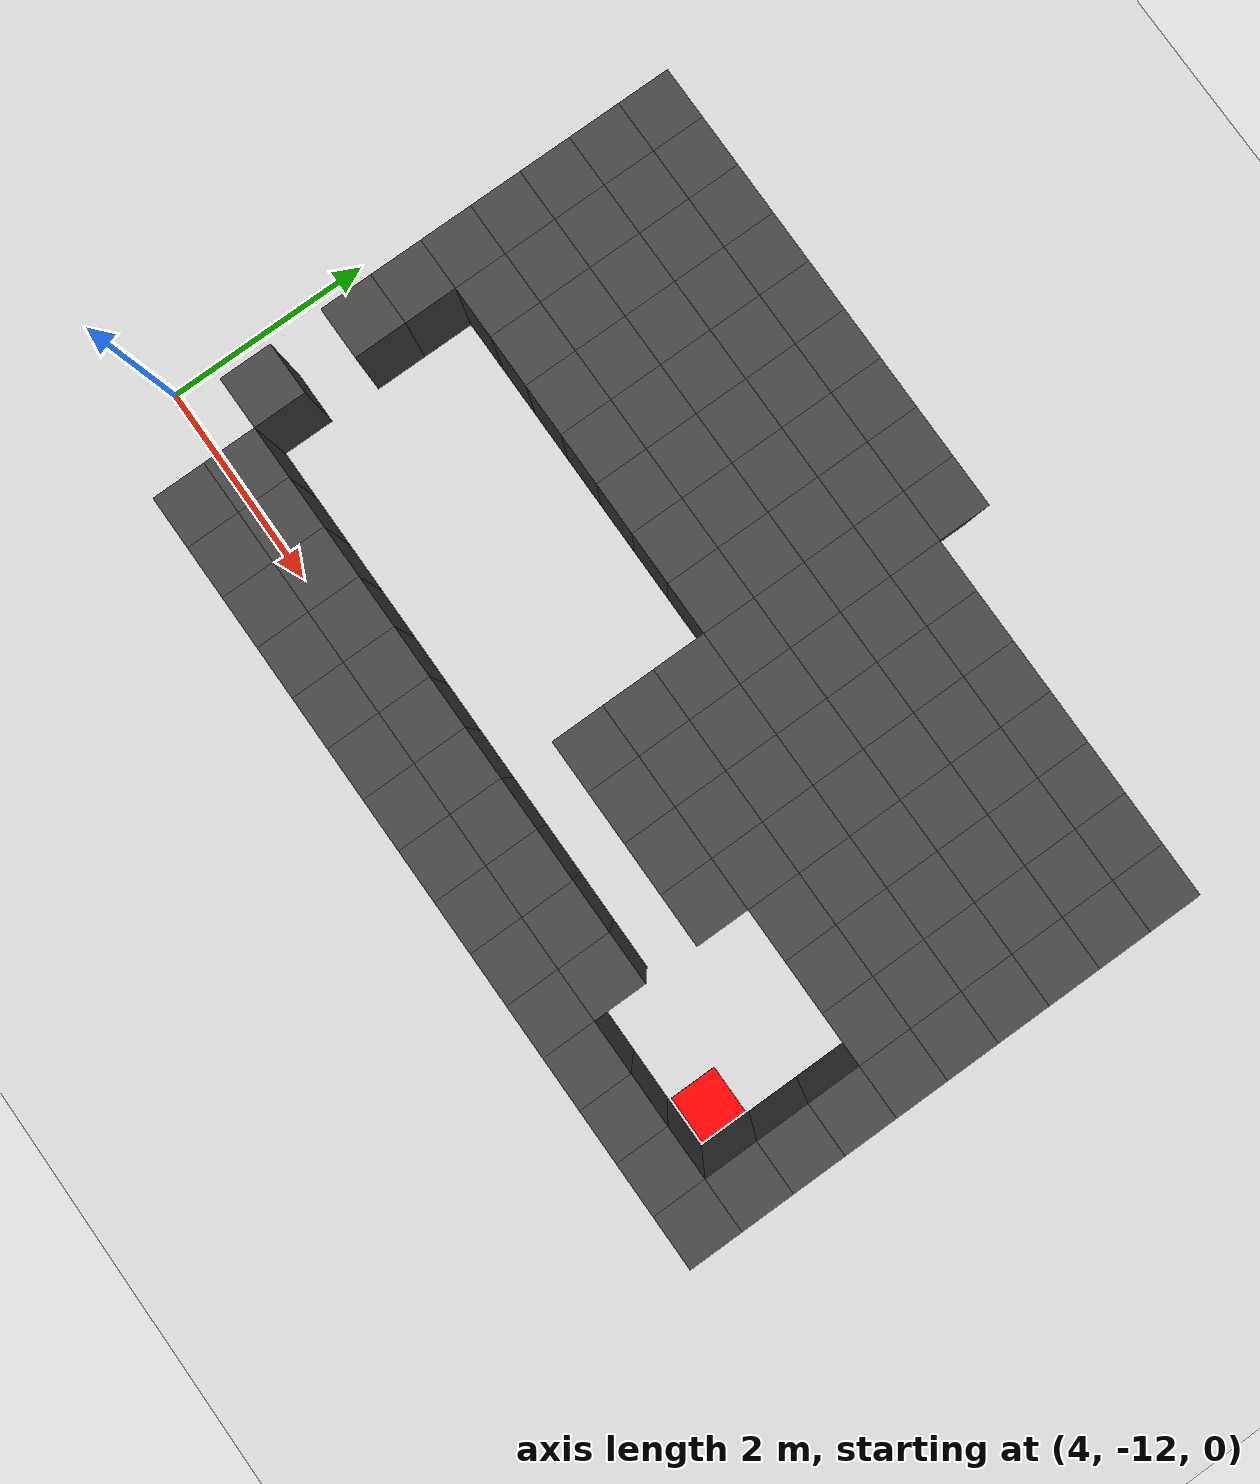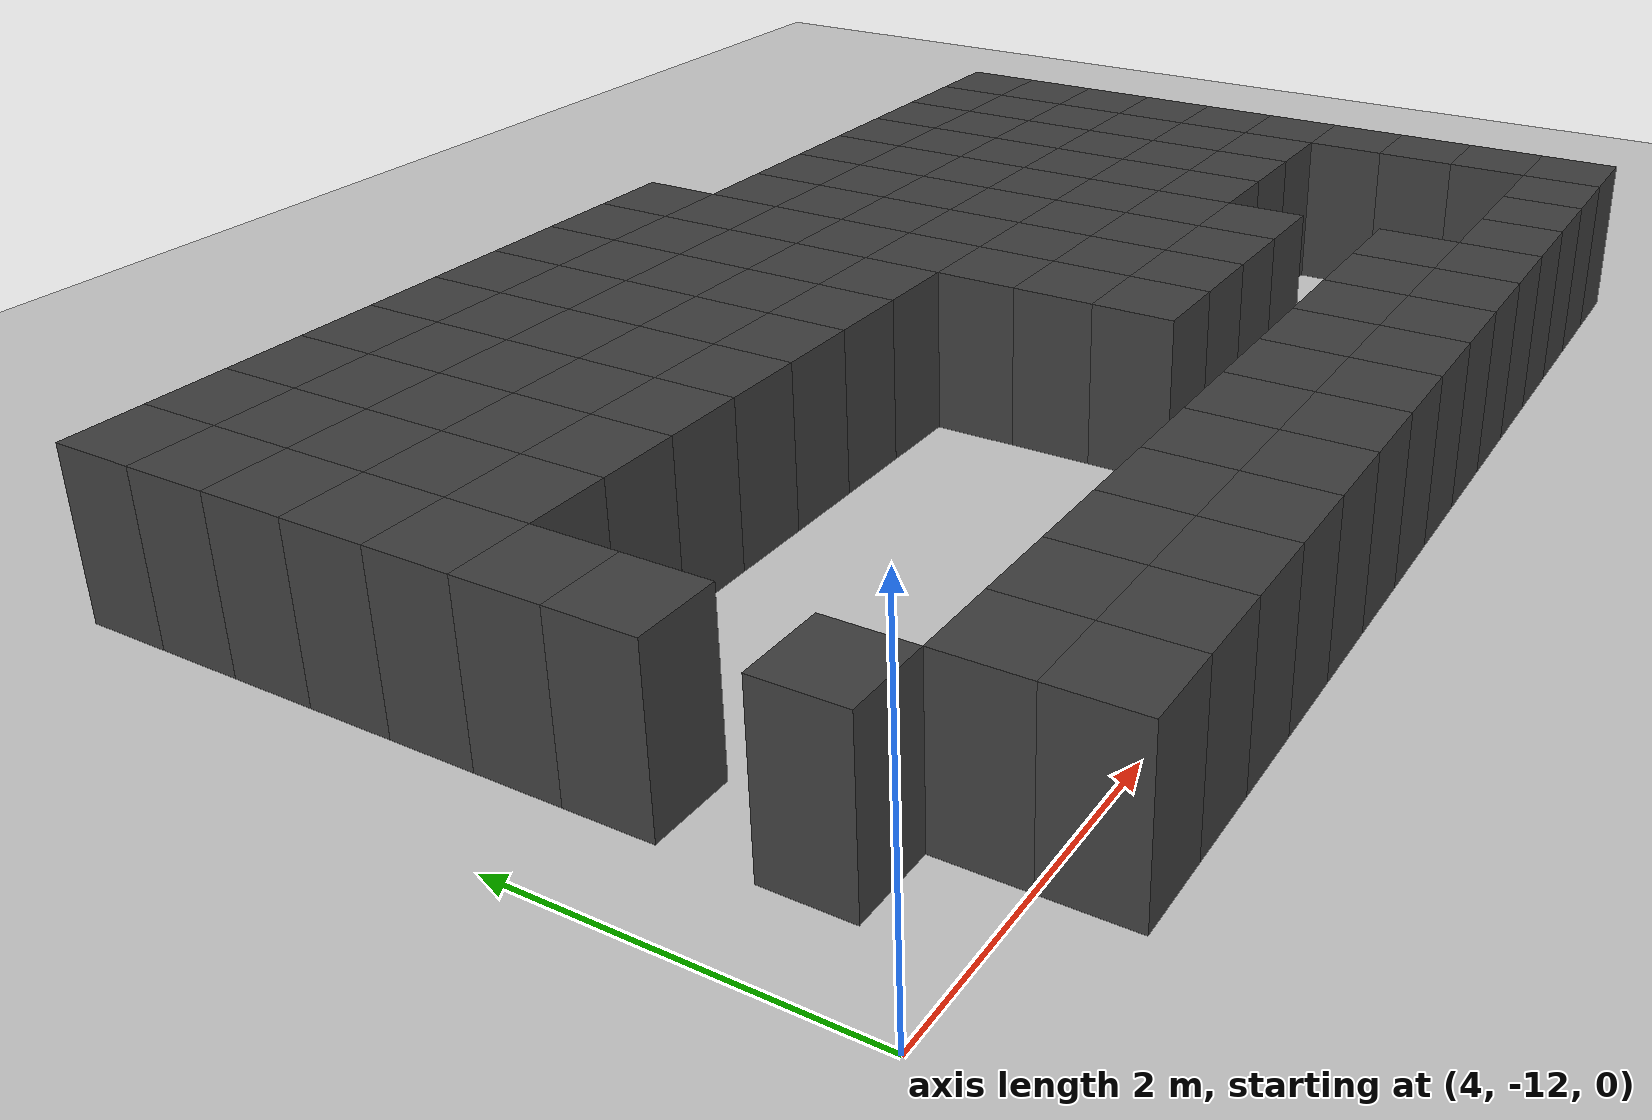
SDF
<sdf version="1.7">
 <world name="map_14056">
  <model name="ground_plane">
   <static>true</static>
   <link name="link">
    <collision name="collision">
     <geometry><plane><normal>0 0 1</normal><size>200 200</size></plane></geometry>
    </collision>
    <visual name="visual">
     <geometry><plane><normal>0 0 1</normal><size>200 200</size></plane></geometry>
     <material><ambient>0.8 0.8 0.8 1</ambient><diffuse>0.8 0.8 0.8 1</diffuse></material>
    </visual>
   </link>
  </model>
  <model name="maze_environment">
   <static>true</static>
   <link name="wall_1396">
    <pose>4.750 -7.250 0.500 0 0 0</pose>
    <collision name="col"><geometry><box><size>0.5 0.5 1.0</size></box></geometry></collision>
    <visual name="vis">
     <geometry><box><size>0.5 0.5 1.0</size></box></geometry>
     <material><ambient>0.15 0.15 0.15 1</ambient><diffuse>0.25 0.25 0.25 1</diffuse></material>
    </visual>
   </link>
   <link name="wall_1397">
    <pose>5.250 -7.250 0.500 0 0 0</pose>
    <collision name="col"><geometry><box><size>0.5 0.5 1.0</size></box></geometry></collision>
    <visual name="vis">
     <geometry><box><size>0.5 0.5 1.0</size></box></geometry>
     <material><ambient>0.15 0.15 0.15 1</ambient><diffuse>0.25 0.25 0.25 1</diffuse></material>
    </visual>
   </link>
   <link name="wall_1398">
    <pose>5.750 -7.250 0.500 0 0 0</pose>
    <collision name="col"><geometry><box><size>0.5 0.5 1.0</size></box></geometry></collision>
    <visual name="vis">
     <geometry><box><size>0.5 0.5 1.0</size></box></geometry>
     <material><ambient>0.15 0.15 0.15 1</ambient><diffuse>0.25 0.25 0.25 1</diffuse></material>
    </visual>
   </link>
   <link name="wall_1399">
    <pose>6.250 -7.250 0.500 0 0 0</pose>
    <collision name="col"><geometry><box><size>0.5 0.5 1.0</size></box></geometry></collision>
    <visual name="vis">
     <geometry><box><size>0.5 0.5 1.0</size></box></geometry>
     <material><ambient>0.15 0.15 0.15 1</ambient><diffuse>0.25 0.25 0.25 1</diffuse></material>
    </visual>
   </link>
   <link name="wall_1400">
    <pose>6.750 -7.250 0.500 0 0 0</pose>
    <collision name="col"><geometry><box><size>0.5 0.5 1.0</size></box></geometry></collision>
    <visual name="vis">
     <geometry><box><size>0.5 0.5 1.0</size></box></geometry>
     <material><ambient>0.15 0.15 0.15 1</ambient><diffuse>0.25 0.25 0.25 1</diffuse></material>
    </visual>
   </link>
   <link name="wall_1401">
    <pose>7.250 -7.250 0.500 0 0 0</pose>
    <collision name="col"><geometry><box><size>0.5 0.5 1.0</size></box></geometry></collision>
    <visual name="vis">
     <geometry><box><size>0.5 0.5 1.0</size></box></geometry>
     <material><ambient>0.15 0.15 0.15 1</ambient><diffuse>0.25 0.25 0.25 1</diffuse></material>
    </visual>
   </link>
   <link name="wall_1402">
    <pose>7.750 -7.250 0.500 0 0 0</pose>
    <collision name="col"><geometry><box><size>0.5 0.5 1.0</size></box></geometry></collision>
    <visual name="vis">
     <geometry><box><size>0.5 0.5 1.0</size></box></geometry>
     <material><ambient>0.15 0.15 0.15 1</ambient><diffuse>0.25 0.25 0.25 1</diffuse></material>
    </visual>
   </link>
   <link name="wall_1403">
    <pose>8.250 -7.250 0.500 0 0 0</pose>
    <collision name="col"><geometry><box><size>0.5 0.5 1.0</size></box></geometry></collision>
    <visual name="vis">
     <geometry><box><size>0.5 0.5 1.0</size></box></geometry>
     <material><ambient>0.15 0.15 0.15 1</ambient><diffuse>0.25 0.25 0.25 1</diffuse></material>
    </visual>
   </link>
   <link name="wall_1404">
    <pose>8.750 -7.250 0.500 0 0 0</pose>
    <collision name="col"><geometry><box><size>0.5 0.5 1.0</size></box></geometry></collision>
    <visual name="vis">
     <geometry><box><size>0.5 0.5 1.0</size></box></geometry>
     <material><ambient>0.15 0.15 0.15 1</ambient><diffuse>0.25 0.25 0.25 1</diffuse></material>
    </visual>
   </link>
   <link name="wall_1431">
    <pose>4.750 -7.750 0.500 0 0 0</pose>
    <collision name="col"><geometry><box><size>0.5 0.5 1.0</size></box></geometry></collision>
    <visual name="vis">
     <geometry><box><size>0.5 0.5 1.0</size></box></geometry>
     <material><ambient>0.15 0.15 0.15 1</ambient><diffuse>0.25 0.25 0.25 1</diffuse></material>
    </visual>
   </link>
   <link name="wall_1432">
    <pose>5.250 -7.750 0.500 0 0 0</pose>
    <collision name="col"><geometry><box><size>0.5 0.5 1.0</size></box></geometry></collision>
    <visual name="vis">
     <geometry><box><size>0.5 0.5 1.0</size></box></geometry>
     <material><ambient>0.15 0.15 0.15 1</ambient><diffuse>0.25 0.25 0.25 1</diffuse></material>
    </visual>
   </link>
   <link name="wall_1433">
    <pose>5.750 -7.750 0.500 0 0 0</pose>
    <collision name="col"><geometry><box><size>0.5 0.5 1.0</size></box></geometry></collision>
    <visual name="vis">
     <geometry><box><size>0.5 0.5 1.0</size></box></geometry>
     <material><ambient>0.15 0.15 0.15 1</ambient><diffuse>0.25 0.25 0.25 1</diffuse></material>
    </visual>
   </link>
   <link name="wall_1434">
    <pose>6.250 -7.750 0.500 0 0 0</pose>
    <collision name="col"><geometry><box><size>0.5 0.5 1.0</size></box></geometry></collision>
    <visual name="vis">
     <geometry><box><size>0.5 0.5 1.0</size></box></geometry>
     <material><ambient>0.15 0.15 0.15 1</ambient><diffuse>0.25 0.25 0.25 1</diffuse></material>
    </visual>
   </link>
   <link name="wall_1435">
    <pose>6.750 -7.750 0.500 0 0 0</pose>
    <collision name="col"><geometry><box><size>0.5 0.5 1.0</size></box></geometry></collision>
    <visual name="vis">
     <geometry><box><size>0.5 0.5 1.0</size></box></geometry>
     <material><ambient>0.15 0.15 0.15 1</ambient><diffuse>0.25 0.25 0.25 1</diffuse></material>
    </visual>
   </link>
   <link name="wall_1436">
    <pose>7.250 -7.750 0.500 0 0 0</pose>
    <collision name="col"><geometry><box><size>0.5 0.5 1.0</size></box></geometry></collision>
    <visual name="vis">
     <geometry><box><size>0.5 0.5 1.0</size></box></geometry>
     <material><ambient>0.15 0.15 0.15 1</ambient><diffuse>0.25 0.25 0.25 1</diffuse></material>
    </visual>
   </link>
   <link name="wall_1437">
    <pose>7.750 -7.750 0.500 0 0 0</pose>
    <collision name="col"><geometry><box><size>0.5 0.5 1.0</size></box></geometry></collision>
    <visual name="vis">
     <geometry><box><size>0.5 0.5 1.0</size></box></geometry>
     <material><ambient>0.15 0.15 0.15 1</ambient><diffuse>0.25 0.25 0.25 1</diffuse></material>
    </visual>
   </link>
   <link name="wall_1438">
    <pose>8.250 -7.750 0.500 0 0 0</pose>
    <collision name="col"><geometry><box><size>0.5 0.5 1.0</size></box></geometry></collision>
    <visual name="vis">
     <geometry><box><size>0.5 0.5 1.0</size></box></geometry>
     <material><ambient>0.15 0.15 0.15 1</ambient><diffuse>0.25 0.25 0.25 1</diffuse></material>
    </visual>
   </link>
   <link name="wall_1439">
    <pose>8.750 -7.750 0.500 0 0 0</pose>
    <collision name="col"><geometry><box><size>0.5 0.5 1.0</size></box></geometry></collision>
    <visual name="vis">
     <geometry><box><size>0.5 0.5 1.0</size></box></geometry>
     <material><ambient>0.15 0.15 0.15 1</ambient><diffuse>0.25 0.25 0.25 1</diffuse></material>
    </visual>
   </link>
   <link name="wall_1440">
    <pose>9.250 -7.750 0.500 0 0 0</pose>
    <collision name="col"><geometry><box><size>0.5 0.5 1.0</size></box></geometry></collision>
    <visual name="vis">
     <geometry><box><size>0.5 0.5 1.0</size></box></geometry>
     <material><ambient>0.15 0.15 0.15 1</ambient><diffuse>0.25 0.25 0.25 1</diffuse></material>
    </visual>
   </link>
   <link name="wall_1441">
    <pose>9.750 -7.750 0.500 0 0 0</pose>
    <collision name="col"><geometry><box><size>0.5 0.5 1.0</size></box></geometry></collision>
    <visual name="vis">
     <geometry><box><size>0.5 0.5 1.0</size></box></geometry>
     <material><ambient>0.15 0.15 0.15 1</ambient><diffuse>0.25 0.25 0.25 1</diffuse></material>
    </visual>
   </link>
   <link name="wall_1442">
    <pose>10.250 -7.750 0.500 0 0 0</pose>
    <collision name="col"><geometry><box><size>0.5 0.5 1.0</size></box></geometry></collision>
    <visual name="vis">
     <geometry><box><size>0.5 0.5 1.0</size></box></geometry>
     <material><ambient>0.15 0.15 0.15 1</ambient><diffuse>0.25 0.25 0.25 1</diffuse></material>
    </visual>
   </link>
   <link name="wall_1443">
    <pose>10.750 -7.750 0.500 0 0 0</pose>
    <collision name="col"><geometry><box><size>0.5 0.5 1.0</size></box></geometry></collision>
    <visual name="vis">
     <geometry><box><size>0.5 0.5 1.0</size></box></geometry>
     <material><ambient>0.15 0.15 0.15 1</ambient><diffuse>0.25 0.25 0.25 1</diffuse></material>
    </visual>
   </link>
   <link name="wall_1444">
    <pose>11.250 -7.750 0.500 0 0 0</pose>
    <collision name="col"><geometry><box><size>0.5 0.5 1.0</size></box></geometry></collision>
    <visual name="vis">
     <geometry><box><size>0.5 0.5 1.0</size></box></geometry>
     <material><ambient>0.15 0.15 0.15 1</ambient><diffuse>0.25 0.25 0.25 1</diffuse></material>
    </visual>
   </link>
   <link name="wall_1445">
    <pose>11.750 -7.750 0.500 0 0 0</pose>
    <collision name="col"><geometry><box><size>0.5 0.5 1.0</size></box></geometry></collision>
    <visual name="vis">
     <geometry><box><size>0.5 0.5 1.0</size></box></geometry>
     <material><ambient>0.15 0.15 0.15 1</ambient><diffuse>0.25 0.25 0.25 1</diffuse></material>
    </visual>
   </link>
   <link name="wall_1446">
    <pose>12.250 -7.750 0.500 0 0 0</pose>
    <collision name="col"><geometry><box><size>0.5 0.5 1.0</size></box></geometry></collision>
    <visual name="vis">
     <geometry><box><size>0.5 0.5 1.0</size></box></geometry>
     <material><ambient>0.15 0.15 0.15 1</ambient><diffuse>0.25 0.25 0.25 1</diffuse></material>
    </visual>
   </link>
   <link name="wall_1467">
    <pose>4.750 -8.250 0.500 0 0 0</pose>
    <collision name="col"><geometry><box><size>0.5 0.5 1.0</size></box></geometry></collision>
    <visual name="vis">
     <geometry><box><size>0.5 0.5 1.0</size></box></geometry>
     <material><ambient>0.15 0.15 0.15 1</ambient><diffuse>0.25 0.25 0.25 1</diffuse></material>
    </visual>
   </link>
   <link name="wall_1468">
    <pose>5.250 -8.250 0.500 0 0 0</pose>
    <collision name="col"><geometry><box><size>0.5 0.5 1.0</size></box></geometry></collision>
    <visual name="vis">
     <geometry><box><size>0.5 0.5 1.0</size></box></geometry>
     <material><ambient>0.15 0.15 0.15 1</ambient><diffuse>0.25 0.25 0.25 1</diffuse></material>
    </visual>
   </link>
   <link name="wall_1469">
    <pose>5.750 -8.250 0.500 0 0 0</pose>
    <collision name="col"><geometry><box><size>0.5 0.5 1.0</size></box></geometry></collision>
    <visual name="vis">
     <geometry><box><size>0.5 0.5 1.0</size></box></geometry>
     <material><ambient>0.15 0.15 0.15 1</ambient><diffuse>0.25 0.25 0.25 1</diffuse></material>
    </visual>
   </link>
   <link name="wall_1470">
    <pose>6.250 -8.250 0.500 0 0 0</pose>
    <collision name="col"><geometry><box><size>0.5 0.5 1.0</size></box></geometry></collision>
    <visual name="vis">
     <geometry><box><size>0.5 0.5 1.0</size></box></geometry>
     <material><ambient>0.15 0.15 0.15 1</ambient><diffuse>0.25 0.25 0.25 1</diffuse></material>
    </visual>
   </link>
   <link name="wall_1471">
    <pose>6.750 -8.250 0.500 0 0 0</pose>
    <collision name="col"><geometry><box><size>0.5 0.5 1.0</size></box></geometry></collision>
    <visual name="vis">
     <geometry><box><size>0.5 0.5 1.0</size></box></geometry>
     <material><ambient>0.15 0.15 0.15 1</ambient><diffuse>0.25 0.25 0.25 1</diffuse></material>
    </visual>
   </link>
   <link name="wall_1472">
    <pose>7.250 -8.250 0.500 0 0 0</pose>
    <collision name="col"><geometry><box><size>0.5 0.5 1.0</size></box></geometry></collision>
    <visual name="vis">
     <geometry><box><size>0.5 0.5 1.0</size></box></geometry>
     <material><ambient>0.15 0.15 0.15 1</ambient><diffuse>0.25 0.25 0.25 1</diffuse></material>
    </visual>
   </link>
   <link name="wall_1473">
    <pose>7.750 -8.250 0.500 0 0 0</pose>
    <collision name="col"><geometry><box><size>0.5 0.5 1.0</size></box></geometry></collision>
    <visual name="vis">
     <geometry><box><size>0.5 0.5 1.0</size></box></geometry>
     <material><ambient>0.15 0.15 0.15 1</ambient><diffuse>0.25 0.25 0.25 1</diffuse></material>
    </visual>
   </link>
   <link name="wall_1474">
    <pose>8.250 -8.250 0.500 0 0 0</pose>
    <collision name="col"><geometry><box><size>0.5 0.5 1.0</size></box></geometry></collision>
    <visual name="vis">
     <geometry><box><size>0.5 0.5 1.0</size></box></geometry>
     <material><ambient>0.15 0.15 0.15 1</ambient><diffuse>0.25 0.25 0.25 1</diffuse></material>
    </visual>
   </link>
   <link name="wall_1475">
    <pose>8.750 -8.250 0.500 0 0 0</pose>
    <collision name="col"><geometry><box><size>0.5 0.5 1.0</size></box></geometry></collision>
    <visual name="vis">
     <geometry><box><size>0.5 0.5 1.0</size></box></geometry>
     <material><ambient>0.15 0.15 0.15 1</ambient><diffuse>0.25 0.25 0.25 1</diffuse></material>
    </visual>
   </link>
   <link name="wall_1476">
    <pose>9.250 -8.250 0.500 0 0 0</pose>
    <collision name="col"><geometry><box><size>0.5 0.5 1.0</size></box></geometry></collision>
    <visual name="vis">
     <geometry><box><size>0.5 0.5 1.0</size></box></geometry>
     <material><ambient>0.15 0.15 0.15 1</ambient><diffuse>0.25 0.25 0.25 1</diffuse></material>
    </visual>
   </link>
   <link name="wall_1477">
    <pose>9.750 -8.250 0.500 0 0 0</pose>
    <collision name="col"><geometry><box><size>0.5 0.5 1.0</size></box></geometry></collision>
    <visual name="vis">
     <geometry><box><size>0.5 0.5 1.0</size></box></geometry>
     <material><ambient>0.15 0.15 0.15 1</ambient><diffuse>0.25 0.25 0.25 1</diffuse></material>
    </visual>
   </link>
   <link name="wall_1478">
    <pose>10.250 -8.250 0.500 0 0 0</pose>
    <collision name="col"><geometry><box><size>0.5 0.5 1.0</size></box></geometry></collision>
    <visual name="vis">
     <geometry><box><size>0.5 0.5 1.0</size></box></geometry>
     <material><ambient>0.15 0.15 0.15 1</ambient><diffuse>0.25 0.25 0.25 1</diffuse></material>
    </visual>
   </link>
   <link name="wall_1479">
    <pose>10.750 -8.250 0.500 0 0 0</pose>
    <collision name="col"><geometry><box><size>0.5 0.5 1.0</size></box></geometry></collision>
    <visual name="vis">
     <geometry><box><size>0.5 0.5 1.0</size></box></geometry>
     <material><ambient>0.15 0.15 0.15 1</ambient><diffuse>0.25 0.25 0.25 1</diffuse></material>
    </visual>
   </link>
   <link name="wall_1480">
    <pose>11.250 -8.250 0.500 0 0 0</pose>
    <collision name="col"><geometry><box><size>0.5 0.5 1.0</size></box></geometry></collision>
    <visual name="vis">
     <geometry><box><size>0.5 0.5 1.0</size></box></geometry>
     <material><ambient>0.15 0.15 0.15 1</ambient><diffuse>0.25 0.25 0.25 1</diffuse></material>
    </visual>
   </link>
   <link name="wall_1481">
    <pose>11.750 -8.250 0.500 0 0 0</pose>
    <collision name="col"><geometry><box><size>0.5 0.5 1.0</size></box></geometry></collision>
    <visual name="vis">
     <geometry><box><size>0.5 0.5 1.0</size></box></geometry>
     <material><ambient>0.15 0.15 0.15 1</ambient><diffuse>0.25 0.25 0.25 1</diffuse></material>
    </visual>
   </link>
   <link name="wall_1482">
    <pose>12.250 -8.250 0.500 0 0 0</pose>
    <collision name="col"><geometry><box><size>0.5 0.5 1.0</size></box></geometry></collision>
    <visual name="vis">
     <geometry><box><size>0.5 0.5 1.0</size></box></geometry>
     <material><ambient>0.15 0.15 0.15 1</ambient><diffuse>0.25 0.25 0.25 1</diffuse></material>
    </visual>
   </link>
   <link name="wall_1503">
    <pose>4.750 -8.750 0.500 0 0 0</pose>
    <collision name="col"><geometry><box><size>0.5 0.5 1.0</size></box></geometry></collision>
    <visual name="vis">
     <geometry><box><size>0.5 0.5 1.0</size></box></geometry>
     <material><ambient>0.15 0.15 0.15 1</ambient><diffuse>0.25 0.25 0.25 1</diffuse></material>
    </visual>
   </link>
   <link name="wall_1504">
    <pose>5.250 -8.750 0.500 0 0 0</pose>
    <collision name="col"><geometry><box><size>0.5 0.5 1.0</size></box></geometry></collision>
    <visual name="vis">
     <geometry><box><size>0.5 0.5 1.0</size></box></geometry>
     <material><ambient>0.15 0.15 0.15 1</ambient><diffuse>0.25 0.25 0.25 1</diffuse></material>
    </visual>
   </link>
   <link name="wall_1505">
    <pose>5.750 -8.750 0.500 0 0 0</pose>
    <collision name="col"><geometry><box><size>0.5 0.5 1.0</size></box></geometry></collision>
    <visual name="vis">
     <geometry><box><size>0.5 0.5 1.0</size></box></geometry>
     <material><ambient>0.15 0.15 0.15 1</ambient><diffuse>0.25 0.25 0.25 1</diffuse></material>
    </visual>
   </link>
   <link name="wall_1506">
    <pose>6.250 -8.750 0.500 0 0 0</pose>
    <collision name="col"><geometry><box><size>0.5 0.5 1.0</size></box></geometry></collision>
    <visual name="vis">
     <geometry><box><size>0.5 0.5 1.0</size></box></geometry>
     <material><ambient>0.15 0.15 0.15 1</ambient><diffuse>0.25 0.25 0.25 1</diffuse></material>
    </visual>
   </link>
   <link name="wall_1507">
    <pose>6.750 -8.750 0.500 0 0 0</pose>
    <collision name="col"><geometry><box><size>0.5 0.5 1.0</size></box></geometry></collision>
    <visual name="vis">
     <geometry><box><size>0.5 0.5 1.0</size></box></geometry>
     <material><ambient>0.15 0.15 0.15 1</ambient><diffuse>0.25 0.25 0.25 1</diffuse></material>
    </visual>
   </link>
   <link name="wall_1508">
    <pose>7.250 -8.750 0.500 0 0 0</pose>
    <collision name="col"><geometry><box><size>0.5 0.5 1.0</size></box></geometry></collision>
    <visual name="vis">
     <geometry><box><size>0.5 0.5 1.0</size></box></geometry>
     <material><ambient>0.15 0.15 0.15 1</ambient><diffuse>0.25 0.25 0.25 1</diffuse></material>
    </visual>
   </link>
   <link name="wall_1509">
    <pose>7.750 -8.750 0.500 0 0 0</pose>
    <collision name="col"><geometry><box><size>0.5 0.5 1.0</size></box></geometry></collision>
    <visual name="vis">
     <geometry><box><size>0.5 0.5 1.0</size></box></geometry>
     <material><ambient>0.15 0.15 0.15 1</ambient><diffuse>0.25 0.25 0.25 1</diffuse></material>
    </visual>
   </link>
   <link name="wall_1510">
    <pose>8.250 -8.750 0.500 0 0 0</pose>
    <collision name="col"><geometry><box><size>0.5 0.5 1.0</size></box></geometry></collision>
    <visual name="vis">
     <geometry><box><size>0.5 0.5 1.0</size></box></geometry>
     <material><ambient>0.15 0.15 0.15 1</ambient><diffuse>0.25 0.25 0.25 1</diffuse></material>
    </visual>
   </link>
   <link name="wall_1511">
    <pose>8.750 -8.750 0.500 0 0 0</pose>
    <collision name="col"><geometry><box><size>0.5 0.5 1.0</size></box></geometry></collision>
    <visual name="vis">
     <geometry><box><size>0.5 0.5 1.0</size></box></geometry>
     <material><ambient>0.15 0.15 0.15 1</ambient><diffuse>0.25 0.25 0.25 1</diffuse></material>
    </visual>
   </link>
   <link name="wall_1512">
    <pose>9.250 -8.750 0.500 0 0 0</pose>
    <collision name="col"><geometry><box><size>0.5 0.5 1.0</size></box></geometry></collision>
    <visual name="vis">
     <geometry><box><size>0.5 0.5 1.0</size></box></geometry>
     <material><ambient>0.15 0.15 0.15 1</ambient><diffuse>0.25 0.25 0.25 1</diffuse></material>
    </visual>
   </link>
   <link name="wall_1513">
    <pose>9.750 -8.750 0.500 0 0 0</pose>
    <collision name="col"><geometry><box><size>0.5 0.5 1.0</size></box></geometry></collision>
    <visual name="vis">
     <geometry><box><size>0.5 0.5 1.0</size></box></geometry>
     <material><ambient>0.15 0.15 0.15 1</ambient><diffuse>0.25 0.25 0.25 1</diffuse></material>
    </visual>
   </link>
   <link name="wall_1514">
    <pose>10.250 -8.750 0.500 0 0 0</pose>
    <collision name="col"><geometry><box><size>0.5 0.5 1.0</size></box></geometry></collision>
    <visual name="vis">
     <geometry><box><size>0.5 0.5 1.0</size></box></geometry>
     <material><ambient>0.15 0.15 0.15 1</ambient><diffuse>0.25 0.25 0.25 1</diffuse></material>
    </visual>
   </link>
   <link name="wall_1515">
    <pose>10.750 -8.750 0.500 0 0 0</pose>
    <collision name="col"><geometry><box><size>0.5 0.5 1.0</size></box></geometry></collision>
    <visual name="vis">
     <geometry><box><size>0.5 0.5 1.0</size></box></geometry>
     <material><ambient>0.15 0.15 0.15 1</ambient><diffuse>0.25 0.25 0.25 1</diffuse></material>
    </visual>
   </link>
   <link name="wall_1516">
    <pose>11.250 -8.750 0.500 0 0 0</pose>
    <collision name="col"><geometry><box><size>0.5 0.5 1.0</size></box></geometry></collision>
    <visual name="vis">
     <geometry><box><size>0.5 0.5 1.0</size></box></geometry>
     <material><ambient>0.15 0.15 0.15 1</ambient><diffuse>0.25 0.25 0.25 1</diffuse></material>
    </visual>
   </link>
   <link name="wall_1517">
    <pose>11.750 -8.750 0.500 0 0 0</pose>
    <collision name="col"><geometry><box><size>0.5 0.5 1.0</size></box></geometry></collision>
    <visual name="vis">
     <geometry><box><size>0.5 0.5 1.0</size></box></geometry>
     <material><ambient>0.15 0.15 0.15 1</ambient><diffuse>0.25 0.25 0.25 1</diffuse></material>
    </visual>
   </link>
   <link name="wall_1518">
    <pose>12.250 -8.750 0.500 0 0 0</pose>
    <collision name="col"><geometry><box><size>0.5 0.5 1.0</size></box></geometry></collision>
    <visual name="vis">
     <geometry><box><size>0.5 0.5 1.0</size></box></geometry>
     <material><ambient>0.15 0.15 0.15 1</ambient><diffuse>0.25 0.25 0.25 1</diffuse></material>
    </visual>
   </link>
   <link name="wall_1539">
    <pose>4.750 -9.250 0.500 0 0 0</pose>
    <collision name="col"><geometry><box><size>0.5 0.5 1.0</size></box></geometry></collision>
    <visual name="vis">
     <geometry><box><size>0.5 0.5 1.0</size></box></geometry>
     <material><ambient>0.15 0.15 0.15 1</ambient><diffuse>0.25 0.25 0.25 1</diffuse></material>
    </visual>
   </link>
   <link name="wall_1540">
    <pose>5.250 -9.250 0.500 0 0 0</pose>
    <collision name="col"><geometry><box><size>0.5 0.5 1.0</size></box></geometry></collision>
    <visual name="vis">
     <geometry><box><size>0.5 0.5 1.0</size></box></geometry>
     <material><ambient>0.15 0.15 0.15 1</ambient><diffuse>0.25 0.25 0.25 1</diffuse></material>
    </visual>
   </link>
   <link name="wall_1541">
    <pose>5.750 -9.250 0.500 0 0 0</pose>
    <collision name="col"><geometry><box><size>0.5 0.5 1.0</size></box></geometry></collision>
    <visual name="vis">
     <geometry><box><size>0.5 0.5 1.0</size></box></geometry>
     <material><ambient>0.15 0.15 0.15 1</ambient><diffuse>0.25 0.25 0.25 1</diffuse></material>
    </visual>
   </link>
   <link name="wall_1542">
    <pose>6.250 -9.250 0.500 0 0 0</pose>
    <collision name="col"><geometry><box><size>0.5 0.5 1.0</size></box></geometry></collision>
    <visual name="vis">
     <geometry><box><size>0.5 0.5 1.0</size></box></geometry>
     <material><ambient>0.15 0.15 0.15 1</ambient><diffuse>0.25 0.25 0.25 1</diffuse></material>
    </visual>
   </link>
   <link name="wall_1543">
    <pose>6.750 -9.250 0.500 0 0 0</pose>
    <collision name="col"><geometry><box><size>0.5 0.5 1.0</size></box></geometry></collision>
    <visual name="vis">
     <geometry><box><size>0.5 0.5 1.0</size></box></geometry>
     <material><ambient>0.15 0.15 0.15 1</ambient><diffuse>0.25 0.25 0.25 1</diffuse></material>
    </visual>
   </link>
   <link name="wall_1544">
    <pose>7.250 -9.250 0.500 0 0 0</pose>
    <collision name="col"><geometry><box><size>0.5 0.5 1.0</size></box></geometry></collision>
    <visual name="vis">
     <geometry><box><size>0.5 0.5 1.0</size></box></geometry>
     <material><ambient>0.15 0.15 0.15 1</ambient><diffuse>0.25 0.25 0.25 1</diffuse></material>
    </visual>
   </link>
   <link name="wall_1545">
    <pose>7.750 -9.250 0.500 0 0 0</pose>
    <collision name="col"><geometry><box><size>0.5 0.5 1.0</size></box></geometry></collision>
    <visual name="vis">
     <geometry><box><size>0.5 0.5 1.0</size></box></geometry>
     <material><ambient>0.15 0.15 0.15 1</ambient><diffuse>0.25 0.25 0.25 1</diffuse></material>
    </visual>
   </link>
   <link name="wall_1546">
    <pose>8.250 -9.250 0.500 0 0 0</pose>
    <collision name="col"><geometry><box><size>0.5 0.5 1.0</size></box></geometry></collision>
    <visual name="vis">
     <geometry><box><size>0.5 0.5 1.0</size></box></geometry>
     <material><ambient>0.15 0.15 0.15 1</ambient><diffuse>0.25 0.25 0.25 1</diffuse></material>
    </visual>
   </link>
   <link name="wall_1547">
    <pose>8.750 -9.250 0.500 0 0 0</pose>
    <collision name="col"><geometry><box><size>0.5 0.5 1.0</size></box></geometry></collision>
    <visual name="vis">
     <geometry><box><size>0.5 0.5 1.0</size></box></geometry>
     <material><ambient>0.15 0.15 0.15 1</ambient><diffuse>0.25 0.25 0.25 1</diffuse></material>
    </visual>
   </link>
   <link name="wall_1548">
    <pose>9.250 -9.250 0.500 0 0 0</pose>
    <collision name="col"><geometry><box><size>0.5 0.5 1.0</size></box></geometry></collision>
    <visual name="vis">
     <geometry><box><size>0.5 0.5 1.0</size></box></geometry>
     <material><ambient>0.15 0.15 0.15 1</ambient><diffuse>0.25 0.25 0.25 1</diffuse></material>
    </visual>
   </link>
   <link name="wall_1549">
    <pose>9.750 -9.250 0.500 0 0 0</pose>
    <collision name="col"><geometry><box><size>0.5 0.5 1.0</size></box></geometry></collision>
    <visual name="vis">
     <geometry><box><size>0.5 0.5 1.0</size></box></geometry>
     <material><ambient>0.15 0.15 0.15 1</ambient><diffuse>0.25 0.25 0.25 1</diffuse></material>
    </visual>
   </link>
   <link name="wall_1550">
    <pose>10.250 -9.250 0.500 0 0 0</pose>
    <collision name="col"><geometry><box><size>0.5 0.5 1.0</size></box></geometry></collision>
    <visual name="vis">
     <geometry><box><size>0.5 0.5 1.0</size></box></geometry>
     <material><ambient>0.15 0.15 0.15 1</ambient><diffuse>0.25 0.25 0.25 1</diffuse></material>
    </visual>
   </link>
   <link name="wall_1551">
    <pose>10.750 -9.250 0.500 0 0 0</pose>
    <collision name="col"><geometry><box><size>0.5 0.5 1.0</size></box></geometry></collision>
    <visual name="vis">
     <geometry><box><size>0.5 0.5 1.0</size></box></geometry>
     <material><ambient>0.15 0.15 0.15 1</ambient><diffuse>0.25 0.25 0.25 1</diffuse></material>
    </visual>
   </link>
   <link name="wall_1552">
    <pose>11.250 -9.250 0.500 0 0 0</pose>
    <collision name="col"><geometry><box><size>0.5 0.5 1.0</size></box></geometry></collision>
    <visual name="vis">
     <geometry><box><size>0.5 0.5 1.0</size></box></geometry>
     <material><ambient>0.15 0.15 0.15 1</ambient><diffuse>0.25 0.25 0.25 1</diffuse></material>
    </visual>
   </link>
   <link name="wall_1553">
    <pose>11.750 -9.250 0.500 0 0 0</pose>
    <collision name="col"><geometry><box><size>0.5 0.5 1.0</size></box></geometry></collision>
    <visual name="vis">
     <geometry><box><size>0.5 0.5 1.0</size></box></geometry>
     <material><ambient>0.15 0.15 0.15 1</ambient><diffuse>0.25 0.25 0.25 1</diffuse></material>
    </visual>
   </link>
   <link name="wall_1554">
    <pose>12.250 -9.250 0.500 0 0 0</pose>
    <collision name="col"><geometry><box><size>0.5 0.5 1.0</size></box></geometry></collision>
    <visual name="vis">
     <geometry><box><size>0.5 0.5 1.0</size></box></geometry>
     <material><ambient>0.15 0.15 0.15 1</ambient><diffuse>0.25 0.25 0.25 1</diffuse></material>
    </visual>
   </link>
   <link name="wall_1579">
    <pose>4.750 -9.750 0.500 0 0 0</pose>
    <collision name="col"><geometry><box><size>0.5 0.5 1.0</size></box></geometry></collision>
    <visual name="vis">
     <geometry><box><size>0.5 0.5 1.0</size></box></geometry>
     <material><ambient>0.15 0.15 0.15 1</ambient><diffuse>0.25 0.25 0.25 1</diffuse></material>
    </visual>
   </link>
   <link name="wall_1580">
    <pose>8.750 -9.750 0.500 0 0 0</pose>
    <collision name="col"><geometry><box><size>0.5 0.5 1.0</size></box></geometry></collision>
    <visual name="vis">
     <geometry><box><size>0.5 0.5 1.0</size></box></geometry>
     <material><ambient>0.15 0.15 0.15 1</ambient><diffuse>0.25 0.25 0.25 1</diffuse></material>
    </visual>
   </link>
   <link name="wall_1581">
    <pose>9.250 -9.750 0.500 0 0 0</pose>
    <collision name="col"><geometry><box><size>0.5 0.5 1.0</size></box></geometry></collision>
    <visual name="vis">
     <geometry><box><size>0.5 0.5 1.0</size></box></geometry>
     <material><ambient>0.15 0.15 0.15 1</ambient><diffuse>0.25 0.25 0.25 1</diffuse></material>
    </visual>
   </link>
   <link name="wall_1582">
    <pose>9.750 -9.750 0.500 0 0 0</pose>
    <collision name="col"><geometry><box><size>0.5 0.5 1.0</size></box></geometry></collision>
    <visual name="vis">
     <geometry><box><size>0.5 0.5 1.0</size></box></geometry>
     <material><ambient>0.15 0.15 0.15 1</ambient><diffuse>0.25 0.25 0.25 1</diffuse></material>
    </visual>
   </link>
   <link name="wall_1583">
    <pose>10.250 -9.750 0.500 0 0 0</pose>
    <collision name="col"><geometry><box><size>0.5 0.5 1.0</size></box></geometry></collision>
    <visual name="vis">
     <geometry><box><size>0.5 0.5 1.0</size></box></geometry>
     <material><ambient>0.15 0.15 0.15 1</ambient><diffuse>0.25 0.25 0.25 1</diffuse></material>
    </visual>
   </link>
   <link name="wall_1584">
    <pose>10.750 -9.750 0.500 0 0 0</pose>
    <collision name="col"><geometry><box><size>0.5 0.5 1.0</size></box></geometry></collision>
    <visual name="vis">
     <geometry><box><size>0.5 0.5 1.0</size></box></geometry>
     <material><ambient>0.15 0.15 0.15 1</ambient><diffuse>0.25 0.25 0.25 1</diffuse></material>
    </visual>
   </link>
   <link name="wall_1585">
    <pose>11.250 -9.750 0.500 0 0 0</pose>
    <collision name="col"><geometry><box><size>0.5 0.5 1.0</size></box></geometry></collision>
    <visual name="vis">
     <geometry><box><size>0.5 0.5 1.0</size></box></geometry>
     <material><ambient>0.15 0.15 0.15 1</ambient><diffuse>0.25 0.25 0.25 1</diffuse></material>
    </visual>
   </link>
   <link name="wall_1586">
    <pose>11.750 -9.750 0.500 0 0 0</pose>
    <collision name="col"><geometry><box><size>0.5 0.5 1.0</size></box></geometry></collision>
    <visual name="vis">
     <geometry><box><size>0.5 0.5 1.0</size></box></geometry>
     <material><ambient>0.15 0.15 0.15 1</ambient><diffuse>0.25 0.25 0.25 1</diffuse></material>
    </visual>
   </link>
   <link name="wall_1587">
    <pose>12.250 -9.750 0.500 0 0 0</pose>
    <collision name="col"><geometry><box><size>0.5 0.5 1.0</size></box></geometry></collision>
    <visual name="vis">
     <geometry><box><size>0.5 0.5 1.0</size></box></geometry>
     <material><ambient>0.15 0.15 0.15 1</ambient><diffuse>0.25 0.25 0.25 1</diffuse></material>
    </visual>
   </link>
   <link name="wall_1615">
    <pose>4.750 -10.250 0.500 0 0 0</pose>
    <collision name="col"><geometry><box><size>0.5 0.5 1.0</size></box></geometry></collision>
    <visual name="vis">
     <geometry><box><size>0.5 0.5 1.0</size></box></geometry>
     <material><ambient>0.15 0.15 0.15 1</ambient><diffuse>0.25 0.25 0.25 1</diffuse></material>
    </visual>
   </link>
   <link name="wall_1616">
    <pose>8.750 -10.250 0.500 0 0 0</pose>
    <collision name="col"><geometry><box><size>0.5 0.5 1.0</size></box></geometry></collision>
    <visual name="vis">
     <geometry><box><size>0.5 0.5 1.0</size></box></geometry>
     <material><ambient>0.15 0.15 0.15 1</ambient><diffuse>0.25 0.25 0.25 1</diffuse></material>
    </visual>
   </link>
   <link name="wall_1617">
    <pose>9.250 -10.250 0.500 0 0 0</pose>
    <collision name="col"><geometry><box><size>0.5 0.5 1.0</size></box></geometry></collision>
    <visual name="vis">
     <geometry><box><size>0.5 0.5 1.0</size></box></geometry>
     <material><ambient>0.15 0.15 0.15 1</ambient><diffuse>0.25 0.25 0.25 1</diffuse></material>
    </visual>
   </link>
   <link name="wall_1618">
    <pose>9.750 -10.250 0.500 0 0 0</pose>
    <collision name="col"><geometry><box><size>0.5 0.5 1.0</size></box></geometry></collision>
    <visual name="vis">
     <geometry><box><size>0.5 0.5 1.0</size></box></geometry>
     <material><ambient>0.15 0.15 0.15 1</ambient><diffuse>0.25 0.25 0.25 1</diffuse></material>
    </visual>
   </link>
   <link name="wall_1619">
    <pose>10.250 -10.250 0.500 0 0 0</pose>
    <collision name="col"><geometry><box><size>0.5 0.5 1.0</size></box></geometry></collision>
    <visual name="vis">
     <geometry><box><size>0.5 0.5 1.0</size></box></geometry>
     <material><ambient>0.15 0.15 0.15 1</ambient><diffuse>0.25 0.25 0.25 1</diffuse></material>
    </visual>
   </link>
   <link name="wall_1620">
    <pose>10.750 -10.250 0.500 0 0 0</pose>
    <collision name="col"><geometry><box><size>0.5 0.5 1.0</size></box></geometry></collision>
    <visual name="vis">
     <geometry><box><size>0.5 0.5 1.0</size></box></geometry>
     <material><ambient>0.15 0.15 0.15 1</ambient><diffuse>0.25 0.25 0.25 1</diffuse></material>
    </visual>
   </link>
   <link name="wall_1621">
    <pose>11.250 -10.250 0.500 0 0 0</pose>
    <collision name="col"><geometry><box><size>0.5 0.5 1.0</size></box></geometry></collision>
    <visual name="vis">
     <geometry><box><size>0.5 0.5 1.0</size></box></geometry>
     <material><ambient>0.15 0.15 0.15 1</ambient><diffuse>0.25 0.25 0.25 1</diffuse></material>
    </visual>
   </link>
   <link name="wall_1622">
    <pose>11.750 -10.250 0.500 0 0 0</pose>
    <collision name="col"><geometry><box><size>0.5 0.5 1.0</size></box></geometry></collision>
    <visual name="vis">
     <geometry><box><size>0.5 0.5 1.0</size></box></geometry>
     <material><ambient>0.15 0.15 0.15 1</ambient><diffuse>0.25 0.25 0.25 1</diffuse></material>
    </visual>
   </link>
   <link name="wall_1623">
    <pose>12.250 -10.250 0.500 0 0 0</pose>
    <collision name="col"><geometry><box><size>0.5 0.5 1.0</size></box></geometry></collision>
    <visual name="vis">
     <geometry><box><size>0.5 0.5 1.0</size></box></geometry>
     <material><ambient>0.15 0.15 0.15 1</ambient><diffuse>0.25 0.25 0.25 1</diffuse></material>
    </visual>
   </link>
   <link name="wall_1644">
    <pose>8.750 -10.750 0.500 0 0 0</pose>
    <collision name="col"><geometry><box><size>0.5 0.5 1.0</size></box></geometry></collision>
    <visual name="vis">
     <geometry><box><size>0.5 0.5 1.0</size></box></geometry>
     <material><ambient>0.15 0.15 0.15 1</ambient><diffuse>0.25 0.25 0.25 1</diffuse></material>
    </visual>
   </link>
   <link name="wall_1645">
    <pose>9.250 -10.750 0.500 0 0 0</pose>
    <collision name="col"><geometry><box><size>0.5 0.5 1.0</size></box></geometry></collision>
    <visual name="vis">
     <geometry><box><size>0.5 0.5 1.0</size></box></geometry>
     <material><ambient>0.15 0.15 0.15 1</ambient><diffuse>0.25 0.25 0.25 1</diffuse></material>
    </visual>
   </link>
   <link name="wall_1646">
    <pose>9.750 -10.750 0.500 0 0 0</pose>
    <collision name="col"><geometry><box><size>0.5 0.5 1.0</size></box></geometry></collision>
    <visual name="vis">
     <geometry><box><size>0.5 0.5 1.0</size></box></geometry>
     <material><ambient>0.15 0.15 0.15 1</ambient><diffuse>0.25 0.25 0.25 1</diffuse></material>
    </visual>
   </link>
   <link name="wall_1647">
    <pose>10.250 -10.750 0.500 0 0 0</pose>
    <collision name="col"><geometry><box><size>0.5 0.5 1.0</size></box></geometry></collision>
    <visual name="vis">
     <geometry><box><size>0.5 0.5 1.0</size></box></geometry>
     <material><ambient>0.15 0.15 0.15 1</ambient><diffuse>0.25 0.25 0.25 1</diffuse></material>
    </visual>
   </link>
   <link name="wall_1648">
    <pose>12.250 -10.750 0.500 0 0 0</pose>
    <collision name="col"><geometry><box><size>0.5 0.5 1.0</size></box></geometry></collision>
    <visual name="vis">
     <geometry><box><size>0.5 0.5 1.0</size></box></geometry>
     <material><ambient>0.15 0.15 0.15 1</ambient><diffuse>0.25 0.25 0.25 1</diffuse></material>
    </visual>
   </link>
   <link name="wall_1677">
    <pose>4.750 -11.250 0.500 0 0 0</pose>
    <collision name="col"><geometry><box><size>0.5 0.5 1.0</size></box></geometry></collision>
    <visual name="vis">
     <geometry><box><size>0.5 0.5 1.0</size></box></geometry>
     <material><ambient>0.15 0.15 0.15 1</ambient><diffuse>0.25 0.25 0.25 1</diffuse></material>
    </visual>
   </link>
   <link name="wall_1678">
    <pose>12.250 -11.250 0.500 0 0 0</pose>
    <collision name="col"><geometry><box><size>0.5 0.5 1.0</size></box></geometry></collision>
    <visual name="vis">
     <geometry><box><size>0.5 0.5 1.0</size></box></geometry>
     <material><ambient>0.15 0.15 0.15 1</ambient><diffuse>0.25 0.25 0.25 1</diffuse></material>
    </visual>
   </link>
   <link name="wall_1714">
    <pose>5.250 -11.750 0.500 0 0 0</pose>
    <collision name="col"><geometry><box><size>0.5 0.5 1.0</size></box></geometry></collision>
    <visual name="vis">
     <geometry><box><size>0.5 0.5 1.0</size></box></geometry>
     <material><ambient>0.15 0.15 0.15 1</ambient><diffuse>0.25 0.25 0.25 1</diffuse></material>
    </visual>
   </link>
   <link name="wall_1715">
    <pose>5.750 -11.750 0.500 0 0 0</pose>
    <collision name="col"><geometry><box><size>0.5 0.5 1.0</size></box></geometry></collision>
    <visual name="vis">
     <geometry><box><size>0.5 0.5 1.0</size></box></geometry>
     <material><ambient>0.15 0.15 0.15 1</ambient><diffuse>0.25 0.25 0.25 1</diffuse></material>
    </visual>
   </link>
   <link name="wall_1716">
    <pose>6.250 -11.750 0.500 0 0 0</pose>
    <collision name="col"><geometry><box><size>0.5 0.5 1.0</size></box></geometry></collision>
    <visual name="vis">
     <geometry><box><size>0.5 0.5 1.0</size></box></geometry>
     <material><ambient>0.15 0.15 0.15 1</ambient><diffuse>0.25 0.25 0.25 1</diffuse></material>
    </visual>
   </link>
   <link name="wall_1717">
    <pose>6.750 -11.750 0.500 0 0 0</pose>
    <collision name="col"><geometry><box><size>0.5 0.5 1.0</size></box></geometry></collision>
    <visual name="vis">
     <geometry><box><size>0.5 0.5 1.0</size></box></geometry>
     <material><ambient>0.15 0.15 0.15 1</ambient><diffuse>0.25 0.25 0.25 1</diffuse></material>
    </visual>
   </link>
   <link name="wall_1718">
    <pose>7.250 -11.750 0.500 0 0 0</pose>
    <collision name="col"><geometry><box><size>0.5 0.5 1.0</size></box></geometry></collision>
    <visual name="vis">
     <geometry><box><size>0.5 0.5 1.0</size></box></geometry>
     <material><ambient>0.15 0.15 0.15 1</ambient><diffuse>0.25 0.25 0.25 1</diffuse></material>
    </visual>
   </link>
   <link name="wall_1719">
    <pose>7.750 -11.750 0.500 0 0 0</pose>
    <collision name="col"><geometry><box><size>0.5 0.5 1.0</size></box></geometry></collision>
    <visual name="vis">
     <geometry><box><size>0.5 0.5 1.0</size></box></geometry>
     <material><ambient>0.15 0.15 0.15 1</ambient><diffuse>0.25 0.25 0.25 1</diffuse></material>
    </visual>
   </link>
   <link name="wall_1720">
    <pose>8.250 -11.750 0.500 0 0 0</pose>
    <collision name="col"><geometry><box><size>0.5 0.5 1.0</size></box></geometry></collision>
    <visual name="vis">
     <geometry><box><size>0.5 0.5 1.0</size></box></geometry>
     <material><ambient>0.15 0.15 0.15 1</ambient><diffuse>0.25 0.25 0.25 1</diffuse></material>
    </visual>
   </link>
   <link name="wall_1721">
    <pose>8.750 -11.750 0.500 0 0 0</pose>
    <collision name="col"><geometry><box><size>0.5 0.5 1.0</size></box></geometry></collision>
    <visual name="vis">
     <geometry><box><size>0.5 0.5 1.0</size></box></geometry>
     <material><ambient>0.15 0.15 0.15 1</ambient><diffuse>0.25 0.25 0.25 1</diffuse></material>
    </visual>
   </link>
   <link name="wall_1722">
    <pose>9.250 -11.750 0.500 0 0 0</pose>
    <collision name="col"><geometry><box><size>0.5 0.5 1.0</size></box></geometry></collision>
    <visual name="vis">
     <geometry><box><size>0.5 0.5 1.0</size></box></geometry>
     <material><ambient>0.15 0.15 0.15 1</ambient><diffuse>0.25 0.25 0.25 1</diffuse></material>
    </visual>
   </link>
   <link name="wall_1723">
    <pose>9.750 -11.750 0.500 0 0 0</pose>
    <collision name="col"><geometry><box><size>0.5 0.5 1.0</size></box></geometry></collision>
    <visual name="vis">
     <geometry><box><size>0.5 0.5 1.0</size></box></geometry>
     <material><ambient>0.15 0.15 0.15 1</ambient><diffuse>0.25 0.25 0.25 1</diffuse></material>
    </visual>
   </link>
   <link name="wall_1724">
    <pose>10.250 -11.750 0.500 0 0 0</pose>
    <collision name="col"><geometry><box><size>0.5 0.5 1.0</size></box></geometry></collision>
    <visual name="vis">
     <geometry><box><size>0.5 0.5 1.0</size></box></geometry>
     <material><ambient>0.15 0.15 0.15 1</ambient><diffuse>0.25 0.25 0.25 1</diffuse></material>
    </visual>
   </link>
   <link name="wall_1725">
    <pose>12.250 -11.750 0.500 0 0 0</pose>
    <collision name="col"><geometry><box><size>0.5 0.5 1.0</size></box></geometry></collision>
    <visual name="vis">
     <geometry><box><size>0.5 0.5 1.0</size></box></geometry>
     <material><ambient>0.15 0.15 0.15 1</ambient><diffuse>0.25 0.25 0.25 1</diffuse></material>
    </visual>
   </link>
   <link name="wall_1761">
    <pose>5.250 -12.250 0.500 0 0 0</pose>
    <collision name="col"><geometry><box><size>0.5 0.5 1.0</size></box></geometry></collision>
    <visual name="vis">
     <geometry><box><size>0.5 0.5 1.0</size></box></geometry>
     <material><ambient>0.15 0.15 0.15 1</ambient><diffuse>0.25 0.25 0.25 1</diffuse></material>
    </visual>
   </link>
   <link name="wall_1762">
    <pose>5.750 -12.250 0.500 0 0 0</pose>
    <collision name="col"><geometry><box><size>0.5 0.5 1.0</size></box></geometry></collision>
    <visual name="vis">
     <geometry><box><size>0.5 0.5 1.0</size></box></geometry>
     <material><ambient>0.15 0.15 0.15 1</ambient><diffuse>0.25 0.25 0.25 1</diffuse></material>
    </visual>
   </link>
   <link name="wall_1763">
    <pose>6.250 -12.250 0.500 0 0 0</pose>
    <collision name="col"><geometry><box><size>0.5 0.5 1.0</size></box></geometry></collision>
    <visual name="vis">
     <geometry><box><size>0.5 0.5 1.0</size></box></geometry>
     <material><ambient>0.15 0.15 0.15 1</ambient><diffuse>0.25 0.25 0.25 1</diffuse></material>
    </visual>
   </link>
   <link name="wall_1764">
    <pose>6.750 -12.250 0.500 0 0 0</pose>
    <collision name="col"><geometry><box><size>0.5 0.5 1.0</size></box></geometry></collision>
    <visual name="vis">
     <geometry><box><size>0.5 0.5 1.0</size></box></geometry>
     <material><ambient>0.15 0.15 0.15 1</ambient><diffuse>0.25 0.25 0.25 1</diffuse></material>
    </visual>
   </link>
   <link name="wall_1765">
    <pose>7.250 -12.250 0.500 0 0 0</pose>
    <collision name="col"><geometry><box><size>0.5 0.5 1.0</size></box></geometry></collision>
    <visual name="vis">
     <geometry><box><size>0.5 0.5 1.0</size></box></geometry>
     <material><ambient>0.15 0.15 0.15 1</ambient><diffuse>0.25 0.25 0.25 1</diffuse></material>
    </visual>
   </link>
   <link name="wall_1766">
    <pose>7.750 -12.250 0.500 0 0 0</pose>
    <collision name="col"><geometry><box><size>0.5 0.5 1.0</size></box></geometry></collision>
    <visual name="vis">
     <geometry><box><size>0.5 0.5 1.0</size></box></geometry>
     <material><ambient>0.15 0.15 0.15 1</ambient><diffuse>0.25 0.25 0.25 1</diffuse></material>
    </visual>
   </link>
   <link name="wall_1767">
    <pose>8.250 -12.250 0.500 0 0 0</pose>
    <collision name="col"><geometry><box><size>0.5 0.5 1.0</size></box></geometry></collision>
    <visual name="vis">
     <geometry><box><size>0.5 0.5 1.0</size></box></geometry>
     <material><ambient>0.15 0.15 0.15 1</ambient><diffuse>0.25 0.25 0.25 1</diffuse></material>
    </visual>
   </link>
   <link name="wall_1768">
    <pose>8.750 -12.250 0.500 0 0 0</pose>
    <collision name="col"><geometry><box><size>0.5 0.5 1.0</size></box></geometry></collision>
    <visual name="vis">
     <geometry><box><size>0.5 0.5 1.0</size></box></geometry>
     <material><ambient>0.15 0.15 0.15 1</ambient><diffuse>0.25 0.25 0.25 1</diffuse></material>
    </visual>
   </link>
   <link name="wall_1769">
    <pose>9.250 -12.250 0.500 0 0 0</pose>
    <collision name="col"><geometry><box><size>0.5 0.5 1.0</size></box></geometry></collision>
    <visual name="vis">
     <geometry><box><size>0.5 0.5 1.0</size></box></geometry>
     <material><ambient>0.15 0.15 0.15 1</ambient><diffuse>0.25 0.25 0.25 1</diffuse></material>
    </visual>
   </link>
   <link name="wall_1770">
    <pose>9.750 -12.250 0.500 0 0 0</pose>
    <collision name="col"><geometry><box><size>0.5 0.5 1.0</size></box></geometry></collision>
    <visual name="vis">
     <geometry><box><size>0.5 0.5 1.0</size></box></geometry>
     <material><ambient>0.15 0.15 0.15 1</ambient><diffuse>0.25 0.25 0.25 1</diffuse></material>
    </visual>
   </link>
   <link name="wall_1771">
    <pose>10.250 -12.250 0.500 0 0 0</pose>
    <collision name="col"><geometry><box><size>0.5 0.5 1.0</size></box></geometry></collision>
    <visual name="vis">
     <geometry><box><size>0.5 0.5 1.0</size></box></geometry>
     <material><ambient>0.15 0.15 0.15 1</ambient><diffuse>0.25 0.25 0.25 1</diffuse></material>
    </visual>
   </link>
   <link name="wall_1772">
    <pose>10.750 -12.250 0.500 0 0 0</pose>
    <collision name="col"><geometry><box><size>0.5 0.5 1.0</size></box></geometry></collision>
    <visual name="vis">
     <geometry><box><size>0.5 0.5 1.0</size></box></geometry>
     <material><ambient>0.15 0.15 0.15 1</ambient><diffuse>0.25 0.25 0.25 1</diffuse></material>
    </visual>
   </link>
   <link name="wall_1773">
    <pose>11.250 -12.250 0.500 0 0 0</pose>
    <collision name="col"><geometry><box><size>0.5 0.5 1.0</size></box></geometry></collision>
    <visual name="vis">
     <geometry><box><size>0.5 0.5 1.0</size></box></geometry>
     <material><ambient>0.15 0.15 0.15 1</ambient><diffuse>0.25 0.25 0.25 1</diffuse></material>
    </visual>
   </link>
   <link name="wall_1774">
    <pose>11.750 -12.250 0.500 0 0 0</pose>
    <collision name="col"><geometry><box><size>0.5 0.5 1.0</size></box></geometry></collision>
    <visual name="vis">
     <geometry><box><size>0.5 0.5 1.0</size></box></geometry>
     <material><ambient>0.15 0.15 0.15 1</ambient><diffuse>0.25 0.25 0.25 1</diffuse></material>
    </visual>
   </link>
   <link name="wall_1775">
    <pose>12.250 -12.250 0.500 0 0 0</pose>
    <collision name="col"><geometry><box><size>0.5 0.5 1.0</size></box></geometry></collision>
    <visual name="vis">
     <geometry><box><size>0.5 0.5 1.0</size></box></geometry>
     <material><ambient>0.15 0.15 0.15 1</ambient><diffuse>0.25 0.25 0.25 1</diffuse></material>
    </visual>
   </link>
   <link name="goal_zone">
    <pose>11.750 -11.750 0.005 0 0 0</pose>
    <visual name="vis">
     <geometry><box><size>0.45 0.45 0.01</size></box></geometry>
     <material>
      <ambient>1.0 0.0 0.0 1</ambient>
      <diffuse>1.0 0.0 0.0 1</diffuse>
      <emissive>0.60 0.00 0.00 1</emissive>
     </material>
    </visual>
   </link>
  </model>
 </world>
</sdf>
